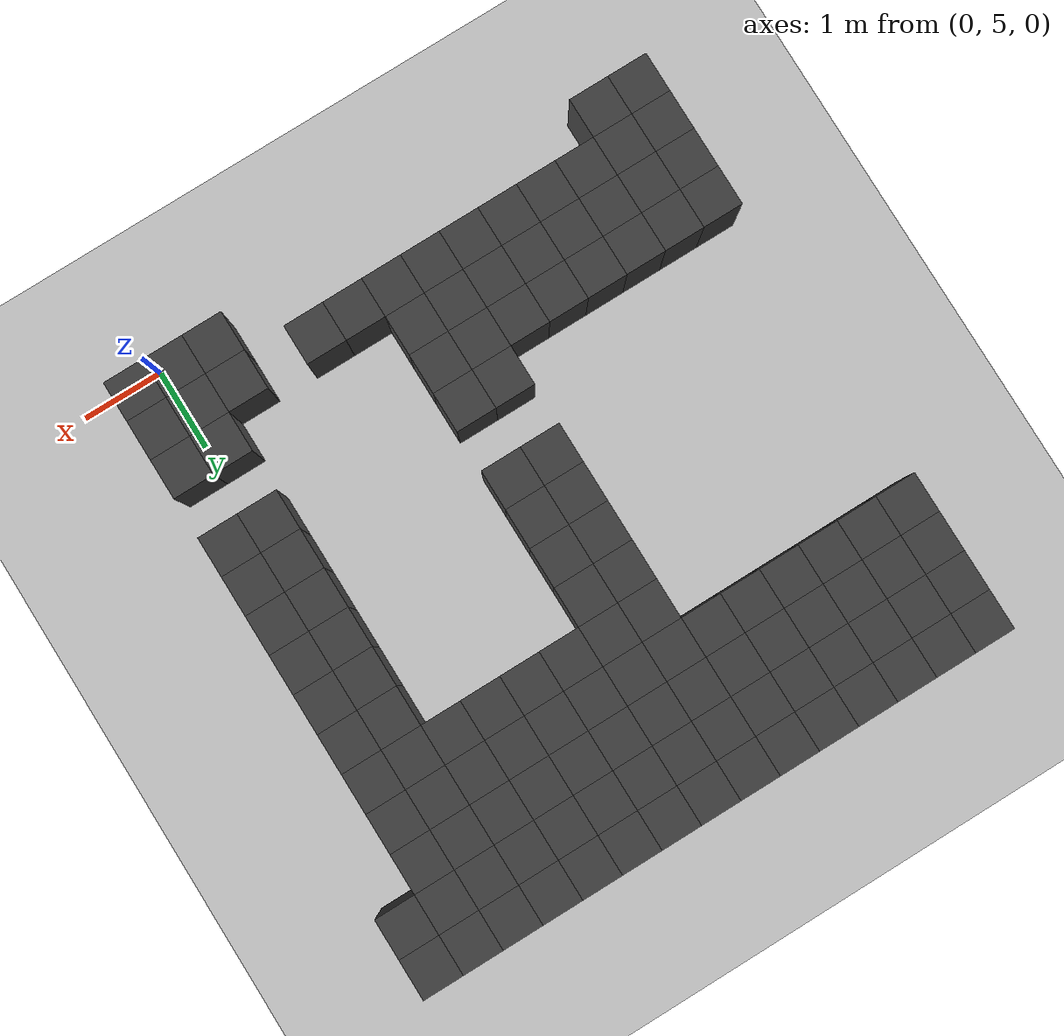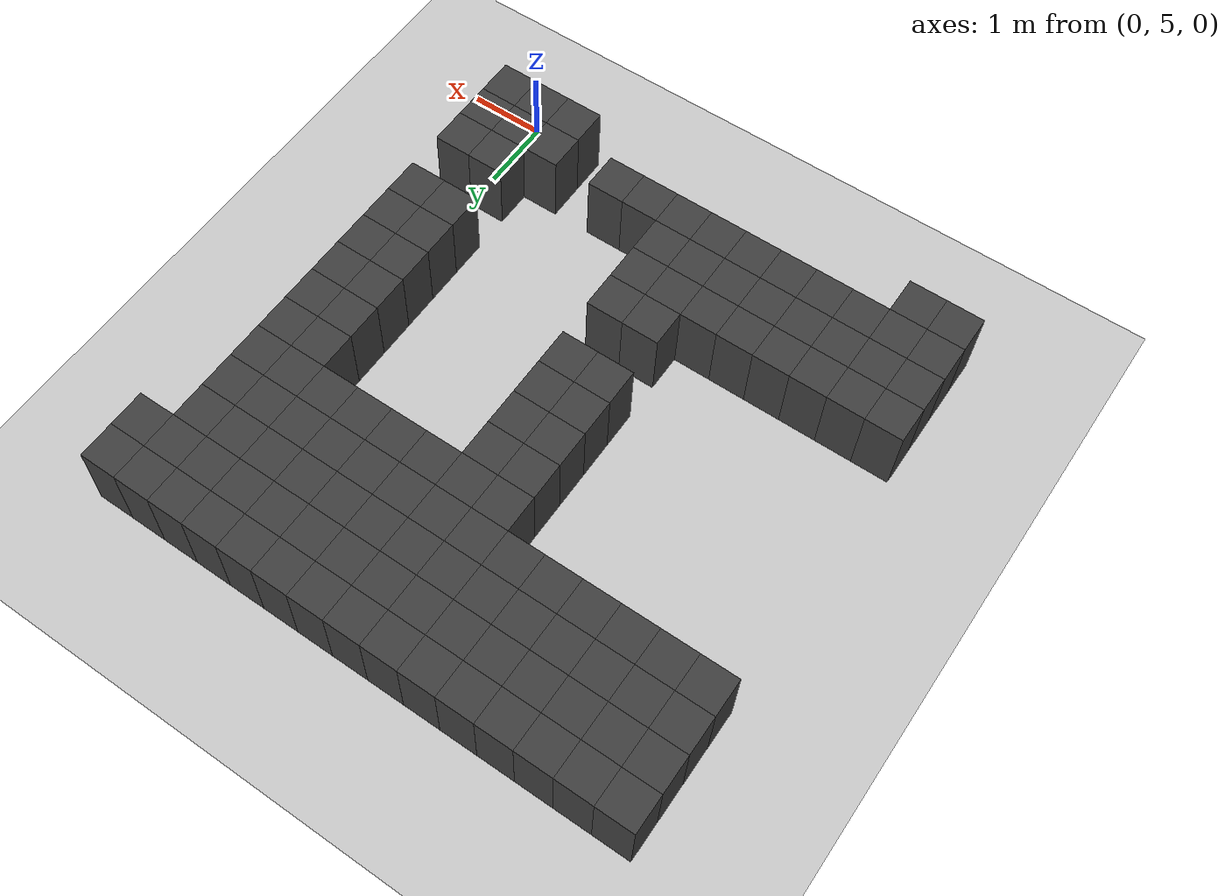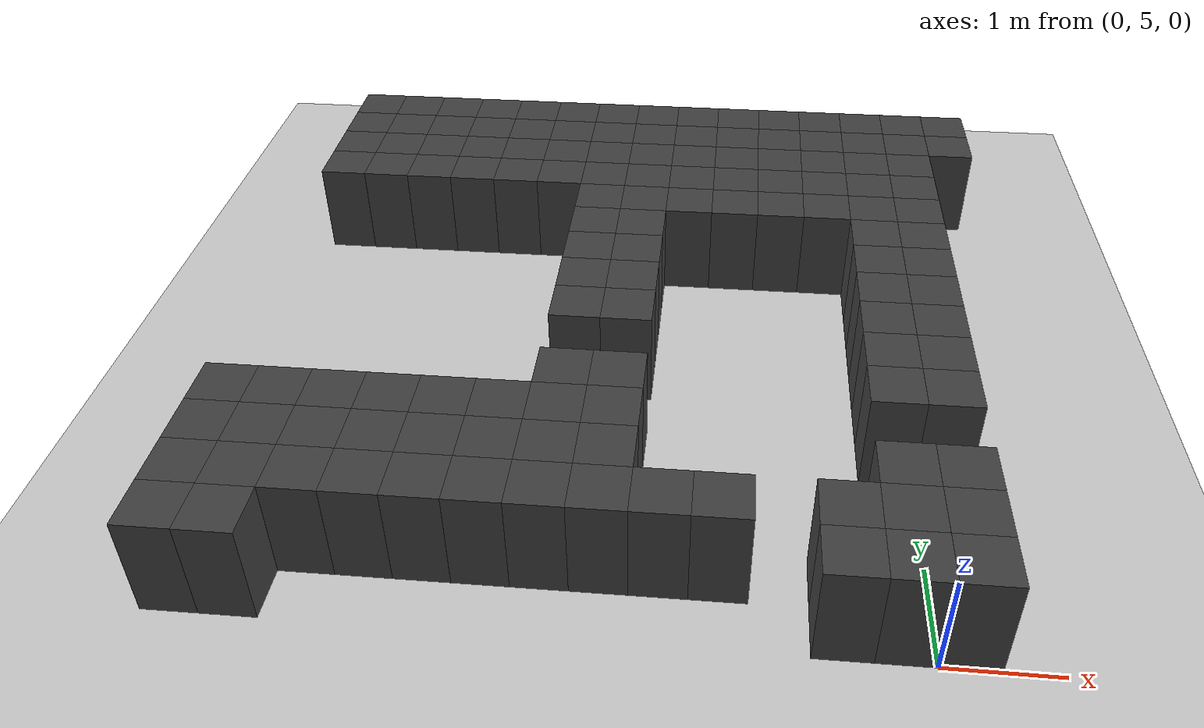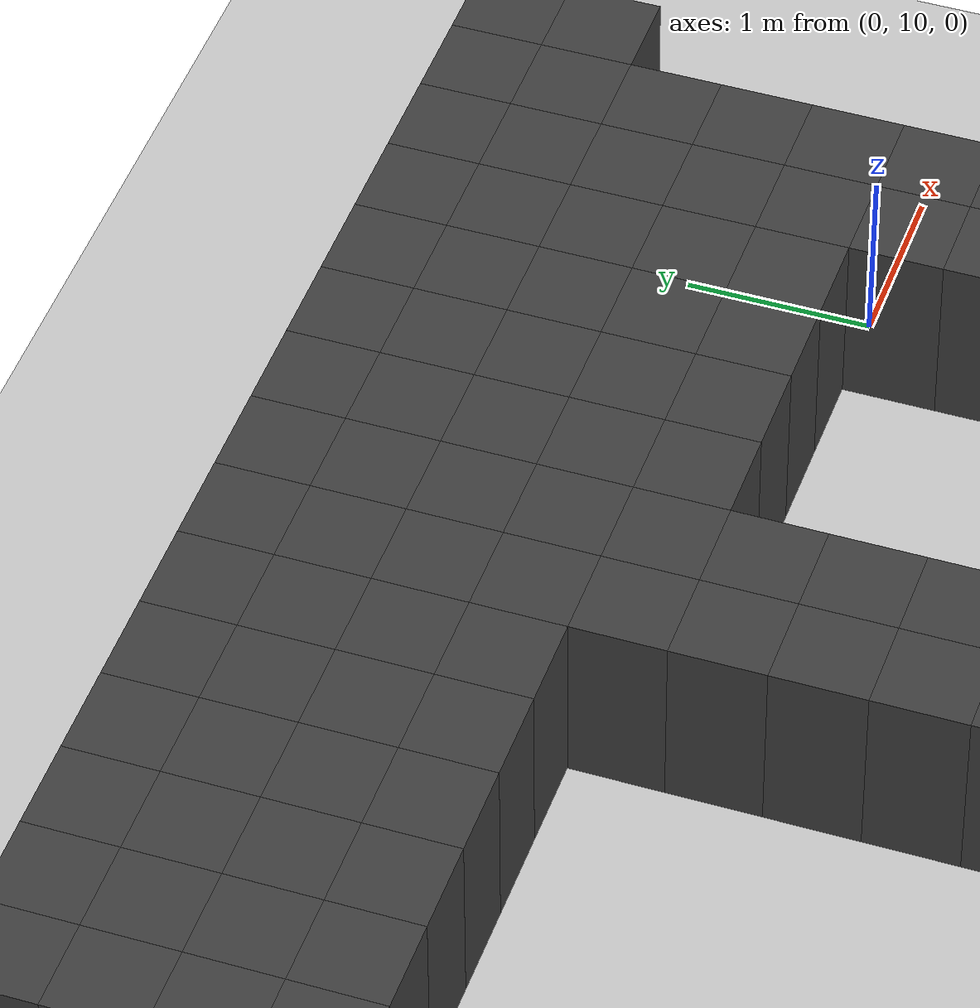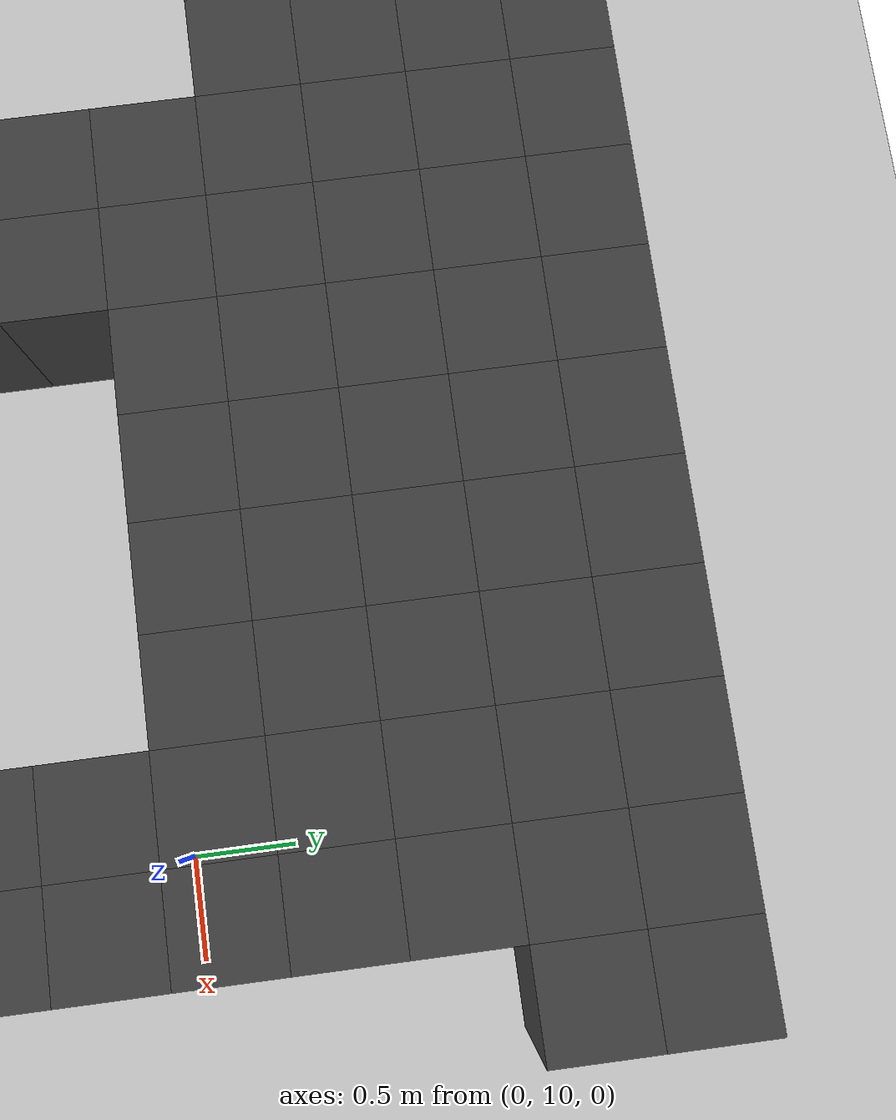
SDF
<sdf version="1.7">
 <world name="map_14802">
  <model name="ground_plane">
   <static>true</static>
   <link name="link">
    <collision name="collision">
     <geometry><plane><normal>0 0 1</normal><size>200 200</size></plane></geometry>
    </collision>
    <visual name="visual">
     <geometry><plane><normal>0 0 1</normal><size>200 200</size></plane></geometry>
     <material><ambient>0.8 0.8 0.8 1</ambient><diffuse>0.8 0.8 0.8 1</diffuse></material>
    </visual>
   </link>
  </model>
  <model name="maze_environment">
   <static>true</static>
   <link name="wall_12">
    <pose>-6.250 12.250 0.500 0 0 0</pose>
    <collision name="col"><geometry><box><size>0.5 0.5 1.0</size></box></geometry></collision>
    <visual name="vis">
     <geometry><box><size>0.5 0.5 1.0</size></box></geometry>
     <material><ambient>0.15 0.15 0.15 1</ambient><diffuse>0.25 0.25 0.25 1</diffuse></material>
    </visual>
   </link>
   <link name="wall_13">
    <pose>-5.750 12.250 0.500 0 0 0</pose>
    <collision name="col"><geometry><box><size>0.5 0.5 1.0</size></box></geometry></collision>
    <visual name="vis">
     <geometry><box><size>0.5 0.5 1.0</size></box></geometry>
     <material><ambient>0.15 0.15 0.15 1</ambient><diffuse>0.25 0.25 0.25 1</diffuse></material>
    </visual>
   </link>
   <link name="wall_14">
    <pose>-5.250 12.250 0.500 0 0 0</pose>
    <collision name="col"><geometry><box><size>0.5 0.5 1.0</size></box></geometry></collision>
    <visual name="vis">
     <geometry><box><size>0.5 0.5 1.0</size></box></geometry>
     <material><ambient>0.15 0.15 0.15 1</ambient><diffuse>0.25 0.25 0.25 1</diffuse></material>
    </visual>
   </link>
   <link name="wall_15">
    <pose>-4.750 12.250 0.500 0 0 0</pose>
    <collision name="col"><geometry><box><size>0.5 0.5 1.0</size></box></geometry></collision>
    <visual name="vis">
     <geometry><box><size>0.5 0.5 1.0</size></box></geometry>
     <material><ambient>0.15 0.15 0.15 1</ambient><diffuse>0.25 0.25 0.25 1</diffuse></material>
    </visual>
   </link>
   <link name="wall_16">
    <pose>-4.250 12.250 0.500 0 0 0</pose>
    <collision name="col"><geometry><box><size>0.5 0.5 1.0</size></box></geometry></collision>
    <visual name="vis">
     <geometry><box><size>0.5 0.5 1.0</size></box></geometry>
     <material><ambient>0.15 0.15 0.15 1</ambient><diffuse>0.25 0.25 0.25 1</diffuse></material>
    </visual>
   </link>
   <link name="wall_17">
    <pose>-3.750 12.250 0.500 0 0 0</pose>
    <collision name="col"><geometry><box><size>0.5 0.5 1.0</size></box></geometry></collision>
    <visual name="vis">
     <geometry><box><size>0.5 0.5 1.0</size></box></geometry>
     <material><ambient>0.15 0.15 0.15 1</ambient><diffuse>0.25 0.25 0.25 1</diffuse></material>
    </visual>
   </link>
   <link name="wall_18">
    <pose>-3.250 12.250 0.500 0 0 0</pose>
    <collision name="col"><geometry><box><size>0.5 0.5 1.0</size></box></geometry></collision>
    <visual name="vis">
     <geometry><box><size>0.5 0.5 1.0</size></box></geometry>
     <material><ambient>0.15 0.15 0.15 1</ambient><diffuse>0.25 0.25 0.25 1</diffuse></material>
    </visual>
   </link>
   <link name="wall_19">
    <pose>-2.750 12.250 0.500 0 0 0</pose>
    <collision name="col"><geometry><box><size>0.5 0.5 1.0</size></box></geometry></collision>
    <visual name="vis">
     <geometry><box><size>0.5 0.5 1.0</size></box></geometry>
     <material><ambient>0.15 0.15 0.15 1</ambient><diffuse>0.25 0.25 0.25 1</diffuse></material>
    </visual>
   </link>
   <link name="wall_20">
    <pose>-2.250 12.250 0.500 0 0 0</pose>
    <collision name="col"><geometry><box><size>0.5 0.5 1.0</size></box></geometry></collision>
    <visual name="vis">
     <geometry><box><size>0.5 0.5 1.0</size></box></geometry>
     <material><ambient>0.15 0.15 0.15 1</ambient><diffuse>0.25 0.25 0.25 1</diffuse></material>
    </visual>
   </link>
   <link name="wall_21">
    <pose>-1.750 12.250 0.500 0 0 0</pose>
    <collision name="col"><geometry><box><size>0.5 0.5 1.0</size></box></geometry></collision>
    <visual name="vis">
     <geometry><box><size>0.5 0.5 1.0</size></box></geometry>
     <material><ambient>0.15 0.15 0.15 1</ambient><diffuse>0.25 0.25 0.25 1</diffuse></material>
    </visual>
   </link>
   <link name="wall_22">
    <pose>-1.250 12.250 0.500 0 0 0</pose>
    <collision name="col"><geometry><box><size>0.5 0.5 1.0</size></box></geometry></collision>
    <visual name="vis">
     <geometry><box><size>0.5 0.5 1.0</size></box></geometry>
     <material><ambient>0.15 0.15 0.15 1</ambient><diffuse>0.25 0.25 0.25 1</diffuse></material>
    </visual>
   </link>
   <link name="wall_23">
    <pose>-0.750 12.250 0.500 0 0 0</pose>
    <collision name="col"><geometry><box><size>0.5 0.5 1.0</size></box></geometry></collision>
    <visual name="vis">
     <geometry><box><size>0.5 0.5 1.0</size></box></geometry>
     <material><ambient>0.15 0.15 0.15 1</ambient><diffuse>0.25 0.25 0.25 1</diffuse></material>
    </visual>
   </link>
   <link name="wall_24">
    <pose>-0.250 12.250 0.500 0 0 0</pose>
    <collision name="col"><geometry><box><size>0.5 0.5 1.0</size></box></geometry></collision>
    <visual name="vis">
     <geometry><box><size>0.5 0.5 1.0</size></box></geometry>
     <material><ambient>0.15 0.15 0.15 1</ambient><diffuse>0.25 0.25 0.25 1</diffuse></material>
    </visual>
   </link>
   <link name="wall_25">
    <pose>0.250 12.250 0.500 0 0 0</pose>
    <collision name="col"><geometry><box><size>0.5 0.5 1.0</size></box></geometry></collision>
    <visual name="vis">
     <geometry><box><size>0.5 0.5 1.0</size></box></geometry>
     <material><ambient>0.15 0.15 0.15 1</ambient><diffuse>0.25 0.25 0.25 1</diffuse></material>
    </visual>
   </link>
   <link name="wall_26">
    <pose>0.750 12.250 0.500 0 0 0</pose>
    <collision name="col"><geometry><box><size>0.5 0.5 1.0</size></box></geometry></collision>
    <visual name="vis">
     <geometry><box><size>0.5 0.5 1.0</size></box></geometry>
     <material><ambient>0.15 0.15 0.15 1</ambient><diffuse>0.25 0.25 0.25 1</diffuse></material>
    </visual>
   </link>
   <link name="wall_59">
    <pose>-6.250 11.750 0.500 0 0 0</pose>
    <collision name="col"><geometry><box><size>0.5 0.5 1.0</size></box></geometry></collision>
    <visual name="vis">
     <geometry><box><size>0.5 0.5 1.0</size></box></geometry>
     <material><ambient>0.15 0.15 0.15 1</ambient><diffuse>0.25 0.25 0.25 1</diffuse></material>
    </visual>
   </link>
   <link name="wall_60">
    <pose>-5.750 11.750 0.500 0 0 0</pose>
    <collision name="col"><geometry><box><size>0.5 0.5 1.0</size></box></geometry></collision>
    <visual name="vis">
     <geometry><box><size>0.5 0.5 1.0</size></box></geometry>
     <material><ambient>0.15 0.15 0.15 1</ambient><diffuse>0.25 0.25 0.25 1</diffuse></material>
    </visual>
   </link>
   <link name="wall_61">
    <pose>-5.250 11.750 0.500 0 0 0</pose>
    <collision name="col"><geometry><box><size>0.5 0.5 1.0</size></box></geometry></collision>
    <visual name="vis">
     <geometry><box><size>0.5 0.5 1.0</size></box></geometry>
     <material><ambient>0.15 0.15 0.15 1</ambient><diffuse>0.25 0.25 0.25 1</diffuse></material>
    </visual>
   </link>
   <link name="wall_62">
    <pose>-4.750 11.750 0.500 0 0 0</pose>
    <collision name="col"><geometry><box><size>0.5 0.5 1.0</size></box></geometry></collision>
    <visual name="vis">
     <geometry><box><size>0.5 0.5 1.0</size></box></geometry>
     <material><ambient>0.15 0.15 0.15 1</ambient><diffuse>0.25 0.25 0.25 1</diffuse></material>
    </visual>
   </link>
   <link name="wall_63">
    <pose>-4.250 11.750 0.500 0 0 0</pose>
    <collision name="col"><geometry><box><size>0.5 0.5 1.0</size></box></geometry></collision>
    <visual name="vis">
     <geometry><box><size>0.5 0.5 1.0</size></box></geometry>
     <material><ambient>0.15 0.15 0.15 1</ambient><diffuse>0.25 0.25 0.25 1</diffuse></material>
    </visual>
   </link>
   <link name="wall_64">
    <pose>-3.750 11.750 0.500 0 0 0</pose>
    <collision name="col"><geometry><box><size>0.5 0.5 1.0</size></box></geometry></collision>
    <visual name="vis">
     <geometry><box><size>0.5 0.5 1.0</size></box></geometry>
     <material><ambient>0.15 0.15 0.15 1</ambient><diffuse>0.25 0.25 0.25 1</diffuse></material>
    </visual>
   </link>
   <link name="wall_65">
    <pose>-3.250 11.750 0.500 0 0 0</pose>
    <collision name="col"><geometry><box><size>0.5 0.5 1.0</size></box></geometry></collision>
    <visual name="vis">
     <geometry><box><size>0.5 0.5 1.0</size></box></geometry>
     <material><ambient>0.15 0.15 0.15 1</ambient><diffuse>0.25 0.25 0.25 1</diffuse></material>
    </visual>
   </link>
   <link name="wall_66">
    <pose>-2.750 11.750 0.500 0 0 0</pose>
    <collision name="col"><geometry><box><size>0.5 0.5 1.0</size></box></geometry></collision>
    <visual name="vis">
     <geometry><box><size>0.5 0.5 1.0</size></box></geometry>
     <material><ambient>0.15 0.15 0.15 1</ambient><diffuse>0.25 0.25 0.25 1</diffuse></material>
    </visual>
   </link>
   <link name="wall_67">
    <pose>-2.250 11.750 0.500 0 0 0</pose>
    <collision name="col"><geometry><box><size>0.5 0.5 1.0</size></box></geometry></collision>
    <visual name="vis">
     <geometry><box><size>0.5 0.5 1.0</size></box></geometry>
     <material><ambient>0.15 0.15 0.15 1</ambient><diffuse>0.25 0.25 0.25 1</diffuse></material>
    </visual>
   </link>
   <link name="wall_68">
    <pose>-1.750 11.750 0.500 0 0 0</pose>
    <collision name="col"><geometry><box><size>0.5 0.5 1.0</size></box></geometry></collision>
    <visual name="vis">
     <geometry><box><size>0.5 0.5 1.0</size></box></geometry>
     <material><ambient>0.15 0.15 0.15 1</ambient><diffuse>0.25 0.25 0.25 1</diffuse></material>
    </visual>
   </link>
   <link name="wall_69">
    <pose>-1.250 11.750 0.500 0 0 0</pose>
    <collision name="col"><geometry><box><size>0.5 0.5 1.0</size></box></geometry></collision>
    <visual name="vis">
     <geometry><box><size>0.5 0.5 1.0</size></box></geometry>
     <material><ambient>0.15 0.15 0.15 1</ambient><diffuse>0.25 0.25 0.25 1</diffuse></material>
    </visual>
   </link>
   <link name="wall_70">
    <pose>-0.750 11.750 0.500 0 0 0</pose>
    <collision name="col"><geometry><box><size>0.5 0.5 1.0</size></box></geometry></collision>
    <visual name="vis">
     <geometry><box><size>0.5 0.5 1.0</size></box></geometry>
     <material><ambient>0.15 0.15 0.15 1</ambient><diffuse>0.25 0.25 0.25 1</diffuse></material>
    </visual>
   </link>
   <link name="wall_71">
    <pose>-0.250 11.750 0.500 0 0 0</pose>
    <collision name="col"><geometry><box><size>0.5 0.5 1.0</size></box></geometry></collision>
    <visual name="vis">
     <geometry><box><size>0.5 0.5 1.0</size></box></geometry>
     <material><ambient>0.15 0.15 0.15 1</ambient><diffuse>0.25 0.25 0.25 1</diffuse></material>
    </visual>
   </link>
   <link name="wall_72">
    <pose>0.250 11.750 0.500 0 0 0</pose>
    <collision name="col"><geometry><box><size>0.5 0.5 1.0</size></box></geometry></collision>
    <visual name="vis">
     <geometry><box><size>0.5 0.5 1.0</size></box></geometry>
     <material><ambient>0.15 0.15 0.15 1</ambient><diffuse>0.25 0.25 0.25 1</diffuse></material>
    </visual>
   </link>
   <link name="wall_73">
    <pose>0.750 11.750 0.500 0 0 0</pose>
    <collision name="col"><geometry><box><size>0.5 0.5 1.0</size></box></geometry></collision>
    <visual name="vis">
     <geometry><box><size>0.5 0.5 1.0</size></box></geometry>
     <material><ambient>0.15 0.15 0.15 1</ambient><diffuse>0.25 0.25 0.25 1</diffuse></material>
    </visual>
   </link>
   <link name="wall_106">
    <pose>-6.250 11.250 0.500 0 0 0</pose>
    <collision name="col"><geometry><box><size>0.5 0.5 1.0</size></box></geometry></collision>
    <visual name="vis">
     <geometry><box><size>0.5 0.5 1.0</size></box></geometry>
     <material><ambient>0.15 0.15 0.15 1</ambient><diffuse>0.25 0.25 0.25 1</diffuse></material>
    </visual>
   </link>
   <link name="wall_107">
    <pose>-5.750 11.250 0.500 0 0 0</pose>
    <collision name="col"><geometry><box><size>0.5 0.5 1.0</size></box></geometry></collision>
    <visual name="vis">
     <geometry><box><size>0.5 0.5 1.0</size></box></geometry>
     <material><ambient>0.15 0.15 0.15 1</ambient><diffuse>0.25 0.25 0.25 1</diffuse></material>
    </visual>
   </link>
   <link name="wall_108">
    <pose>-5.250 11.250 0.500 0 0 0</pose>
    <collision name="col"><geometry><box><size>0.5 0.5 1.0</size></box></geometry></collision>
    <visual name="vis">
     <geometry><box><size>0.5 0.5 1.0</size></box></geometry>
     <material><ambient>0.15 0.15 0.15 1</ambient><diffuse>0.25 0.25 0.25 1</diffuse></material>
    </visual>
   </link>
   <link name="wall_109">
    <pose>-4.750 11.250 0.500 0 0 0</pose>
    <collision name="col"><geometry><box><size>0.5 0.5 1.0</size></box></geometry></collision>
    <visual name="vis">
     <geometry><box><size>0.5 0.5 1.0</size></box></geometry>
     <material><ambient>0.15 0.15 0.15 1</ambient><diffuse>0.25 0.25 0.25 1</diffuse></material>
    </visual>
   </link>
   <link name="wall_110">
    <pose>-4.250 11.250 0.500 0 0 0</pose>
    <collision name="col"><geometry><box><size>0.5 0.5 1.0</size></box></geometry></collision>
    <visual name="vis">
     <geometry><box><size>0.5 0.5 1.0</size></box></geometry>
     <material><ambient>0.15 0.15 0.15 1</ambient><diffuse>0.25 0.25 0.25 1</diffuse></material>
    </visual>
   </link>
   <link name="wall_111">
    <pose>-3.750 11.250 0.500 0 0 0</pose>
    <collision name="col"><geometry><box><size>0.5 0.5 1.0</size></box></geometry></collision>
    <visual name="vis">
     <geometry><box><size>0.5 0.5 1.0</size></box></geometry>
     <material><ambient>0.15 0.15 0.15 1</ambient><diffuse>0.25 0.25 0.25 1</diffuse></material>
    </visual>
   </link>
   <link name="wall_112">
    <pose>-3.250 11.250 0.500 0 0 0</pose>
    <collision name="col"><geometry><box><size>0.5 0.5 1.0</size></box></geometry></collision>
    <visual name="vis">
     <geometry><box><size>0.5 0.5 1.0</size></box></geometry>
     <material><ambient>0.15 0.15 0.15 1</ambient><diffuse>0.25 0.25 0.25 1</diffuse></material>
    </visual>
   </link>
   <link name="wall_113">
    <pose>-2.750 11.250 0.500 0 0 0</pose>
    <collision name="col"><geometry><box><size>0.5 0.5 1.0</size></box></geometry></collision>
    <visual name="vis">
     <geometry><box><size>0.5 0.5 1.0</size></box></geometry>
     <material><ambient>0.15 0.15 0.15 1</ambient><diffuse>0.25 0.25 0.25 1</diffuse></material>
    </visual>
   </link>
   <link name="wall_114">
    <pose>-2.250 11.250 0.500 0 0 0</pose>
    <collision name="col"><geometry><box><size>0.5 0.5 1.0</size></box></geometry></collision>
    <visual name="vis">
     <geometry><box><size>0.5 0.5 1.0</size></box></geometry>
     <material><ambient>0.15 0.15 0.15 1</ambient><diffuse>0.25 0.25 0.25 1</diffuse></material>
    </visual>
   </link>
   <link name="wall_115">
    <pose>-1.750 11.250 0.500 0 0 0</pose>
    <collision name="col"><geometry><box><size>0.5 0.5 1.0</size></box></geometry></collision>
    <visual name="vis">
     <geometry><box><size>0.5 0.5 1.0</size></box></geometry>
     <material><ambient>0.15 0.15 0.15 1</ambient><diffuse>0.25 0.25 0.25 1</diffuse></material>
    </visual>
   </link>
   <link name="wall_116">
    <pose>-1.250 11.250 0.500 0 0 0</pose>
    <collision name="col"><geometry><box><size>0.5 0.5 1.0</size></box></geometry></collision>
    <visual name="vis">
     <geometry><box><size>0.5 0.5 1.0</size></box></geometry>
     <material><ambient>0.15 0.15 0.15 1</ambient><diffuse>0.25 0.25 0.25 1</diffuse></material>
    </visual>
   </link>
   <link name="wall_117">
    <pose>-0.750 11.250 0.500 0 0 0</pose>
    <collision name="col"><geometry><box><size>0.5 0.5 1.0</size></box></geometry></collision>
    <visual name="vis">
     <geometry><box><size>0.5 0.5 1.0</size></box></geometry>
     <material><ambient>0.15 0.15 0.15 1</ambient><diffuse>0.25 0.25 0.25 1</diffuse></material>
    </visual>
   </link>
   <link name="wall_118">
    <pose>-0.250 11.250 0.500 0 0 0</pose>
    <collision name="col"><geometry><box><size>0.5 0.5 1.0</size></box></geometry></collision>
    <visual name="vis">
     <geometry><box><size>0.5 0.5 1.0</size></box></geometry>
     <material><ambient>0.15 0.15 0.15 1</ambient><diffuse>0.25 0.25 0.25 1</diffuse></material>
    </visual>
   </link>
   <link name="wall_119">
    <pose>0.250 11.250 0.500 0 0 0</pose>
    <collision name="col"><geometry><box><size>0.5 0.5 1.0</size></box></geometry></collision>
    <visual name="vis">
     <geometry><box><size>0.5 0.5 1.0</size></box></geometry>
     <material><ambient>0.15 0.15 0.15 1</ambient><diffuse>0.25 0.25 0.25 1</diffuse></material>
    </visual>
   </link>
   <link name="wall_148">
    <pose>-6.250 10.750 0.500 0 0 0</pose>
    <collision name="col"><geometry><box><size>0.5 0.5 1.0</size></box></geometry></collision>
    <visual name="vis">
     <geometry><box><size>0.5 0.5 1.0</size></box></geometry>
     <material><ambient>0.15 0.15 0.15 1</ambient><diffuse>0.25 0.25 0.25 1</diffuse></material>
    </visual>
   </link>
   <link name="wall_149">
    <pose>-5.750 10.750 0.500 0 0 0</pose>
    <collision name="col"><geometry><box><size>0.5 0.5 1.0</size></box></geometry></collision>
    <visual name="vis">
     <geometry><box><size>0.5 0.5 1.0</size></box></geometry>
     <material><ambient>0.15 0.15 0.15 1</ambient><diffuse>0.25 0.25 0.25 1</diffuse></material>
    </visual>
   </link>
   <link name="wall_150">
    <pose>-5.250 10.750 0.500 0 0 0</pose>
    <collision name="col"><geometry><box><size>0.5 0.5 1.0</size></box></geometry></collision>
    <visual name="vis">
     <geometry><box><size>0.5 0.5 1.0</size></box></geometry>
     <material><ambient>0.15 0.15 0.15 1</ambient><diffuse>0.25 0.25 0.25 1</diffuse></material>
    </visual>
   </link>
   <link name="wall_151">
    <pose>-4.750 10.750 0.500 0 0 0</pose>
    <collision name="col"><geometry><box><size>0.5 0.5 1.0</size></box></geometry></collision>
    <visual name="vis">
     <geometry><box><size>0.5 0.5 1.0</size></box></geometry>
     <material><ambient>0.15 0.15 0.15 1</ambient><diffuse>0.25 0.25 0.25 1</diffuse></material>
    </visual>
   </link>
   <link name="wall_152">
    <pose>-4.250 10.750 0.500 0 0 0</pose>
    <collision name="col"><geometry><box><size>0.5 0.5 1.0</size></box></geometry></collision>
    <visual name="vis">
     <geometry><box><size>0.5 0.5 1.0</size></box></geometry>
     <material><ambient>0.15 0.15 0.15 1</ambient><diffuse>0.25 0.25 0.25 1</diffuse></material>
    </visual>
   </link>
   <link name="wall_153">
    <pose>-3.750 10.750 0.500 0 0 0</pose>
    <collision name="col"><geometry><box><size>0.5 0.5 1.0</size></box></geometry></collision>
    <visual name="vis">
     <geometry><box><size>0.5 0.5 1.0</size></box></geometry>
     <material><ambient>0.15 0.15 0.15 1</ambient><diffuse>0.25 0.25 0.25 1</diffuse></material>
    </visual>
   </link>
   <link name="wall_154">
    <pose>-3.250 10.750 0.500 0 0 0</pose>
    <collision name="col"><geometry><box><size>0.5 0.5 1.0</size></box></geometry></collision>
    <visual name="vis">
     <geometry><box><size>0.5 0.5 1.0</size></box></geometry>
     <material><ambient>0.15 0.15 0.15 1</ambient><diffuse>0.25 0.25 0.25 1</diffuse></material>
    </visual>
   </link>
   <link name="wall_155">
    <pose>-2.750 10.750 0.500 0 0 0</pose>
    <collision name="col"><geometry><box><size>0.5 0.5 1.0</size></box></geometry></collision>
    <visual name="vis">
     <geometry><box><size>0.5 0.5 1.0</size></box></geometry>
     <material><ambient>0.15 0.15 0.15 1</ambient><diffuse>0.25 0.25 0.25 1</diffuse></material>
    </visual>
   </link>
   <link name="wall_156">
    <pose>-2.250 10.750 0.500 0 0 0</pose>
    <collision name="col"><geometry><box><size>0.5 0.5 1.0</size></box></geometry></collision>
    <visual name="vis">
     <geometry><box><size>0.5 0.5 1.0</size></box></geometry>
     <material><ambient>0.15 0.15 0.15 1</ambient><diffuse>0.25 0.25 0.25 1</diffuse></material>
    </visual>
   </link>
   <link name="wall_157">
    <pose>-1.750 10.750 0.500 0 0 0</pose>
    <collision name="col"><geometry><box><size>0.5 0.5 1.0</size></box></geometry></collision>
    <visual name="vis">
     <geometry><box><size>0.5 0.5 1.0</size></box></geometry>
     <material><ambient>0.15 0.15 0.15 1</ambient><diffuse>0.25 0.25 0.25 1</diffuse></material>
    </visual>
   </link>
   <link name="wall_158">
    <pose>-1.250 10.750 0.500 0 0 0</pose>
    <collision name="col"><geometry><box><size>0.5 0.5 1.0</size></box></geometry></collision>
    <visual name="vis">
     <geometry><box><size>0.5 0.5 1.0</size></box></geometry>
     <material><ambient>0.15 0.15 0.15 1</ambient><diffuse>0.25 0.25 0.25 1</diffuse></material>
    </visual>
   </link>
   <link name="wall_159">
    <pose>-0.750 10.750 0.500 0 0 0</pose>
    <collision name="col"><geometry><box><size>0.5 0.5 1.0</size></box></geometry></collision>
    <visual name="vis">
     <geometry><box><size>0.5 0.5 1.0</size></box></geometry>
     <material><ambient>0.15 0.15 0.15 1</ambient><diffuse>0.25 0.25 0.25 1</diffuse></material>
    </visual>
   </link>
   <link name="wall_160">
    <pose>-0.250 10.750 0.500 0 0 0</pose>
    <collision name="col"><geometry><box><size>0.5 0.5 1.0</size></box></geometry></collision>
    <visual name="vis">
     <geometry><box><size>0.5 0.5 1.0</size></box></geometry>
     <material><ambient>0.15 0.15 0.15 1</ambient><diffuse>0.25 0.25 0.25 1</diffuse></material>
    </visual>
   </link>
   <link name="wall_161">
    <pose>0.250 10.750 0.500 0 0 0</pose>
    <collision name="col"><geometry><box><size>0.5 0.5 1.0</size></box></geometry></collision>
    <visual name="vis">
     <geometry><box><size>0.5 0.5 1.0</size></box></geometry>
     <material><ambient>0.15 0.15 0.15 1</ambient><diffuse>0.25 0.25 0.25 1</diffuse></material>
    </visual>
   </link>
   <link name="wall_190">
    <pose>-3.250 10.250 0.500 0 0 0</pose>
    <collision name="col"><geometry><box><size>0.5 0.5 1.0</size></box></geometry></collision>
    <visual name="vis">
     <geometry><box><size>0.5 0.5 1.0</size></box></geometry>
     <material><ambient>0.15 0.15 0.15 1</ambient><diffuse>0.25 0.25 0.25 1</diffuse></material>
    </visual>
   </link>
   <link name="wall_191">
    <pose>-2.750 10.250 0.500 0 0 0</pose>
    <collision name="col"><geometry><box><size>0.5 0.5 1.0</size></box></geometry></collision>
    <visual name="vis">
     <geometry><box><size>0.5 0.5 1.0</size></box></geometry>
     <material><ambient>0.15 0.15 0.15 1</ambient><diffuse>0.25 0.25 0.25 1</diffuse></material>
    </visual>
   </link>
   <link name="wall_192">
    <pose>-2.250 10.250 0.500 0 0 0</pose>
    <collision name="col"><geometry><box><size>0.5 0.5 1.0</size></box></geometry></collision>
    <visual name="vis">
     <geometry><box><size>0.5 0.5 1.0</size></box></geometry>
     <material><ambient>0.15 0.15 0.15 1</ambient><diffuse>0.25 0.25 0.25 1</diffuse></material>
    </visual>
   </link>
   <link name="wall_193">
    <pose>-1.750 10.250 0.500 0 0 0</pose>
    <collision name="col"><geometry><box><size>0.5 0.5 1.0</size></box></geometry></collision>
    <visual name="vis">
     <geometry><box><size>0.5 0.5 1.0</size></box></geometry>
     <material><ambient>0.15 0.15 0.15 1</ambient><diffuse>0.25 0.25 0.25 1</diffuse></material>
    </visual>
   </link>
   <link name="wall_194">
    <pose>-1.250 10.250 0.500 0 0 0</pose>
    <collision name="col"><geometry><box><size>0.5 0.5 1.0</size></box></geometry></collision>
    <visual name="vis">
     <geometry><box><size>0.5 0.5 1.0</size></box></geometry>
     <material><ambient>0.15 0.15 0.15 1</ambient><diffuse>0.25 0.25 0.25 1</diffuse></material>
    </visual>
   </link>
   <link name="wall_195">
    <pose>-0.750 10.250 0.500 0 0 0</pose>
    <collision name="col"><geometry><box><size>0.5 0.5 1.0</size></box></geometry></collision>
    <visual name="vis">
     <geometry><box><size>0.5 0.5 1.0</size></box></geometry>
     <material><ambient>0.15 0.15 0.15 1</ambient><diffuse>0.25 0.25 0.25 1</diffuse></material>
    </visual>
   </link>
   <link name="wall_196">
    <pose>-0.250 10.250 0.500 0 0 0</pose>
    <collision name="col"><geometry><box><size>0.5 0.5 1.0</size></box></geometry></collision>
    <visual name="vis">
     <geometry><box><size>0.5 0.5 1.0</size></box></geometry>
     <material><ambient>0.15 0.15 0.15 1</ambient><diffuse>0.25 0.25 0.25 1</diffuse></material>
    </visual>
   </link>
   <link name="wall_197">
    <pose>0.250 10.250 0.500 0 0 0</pose>
    <collision name="col"><geometry><box><size>0.5 0.5 1.0</size></box></geometry></collision>
    <visual name="vis">
     <geometry><box><size>0.5 0.5 1.0</size></box></geometry>
     <material><ambient>0.15 0.15 0.15 1</ambient><diffuse>0.25 0.25 0.25 1</diffuse></material>
    </visual>
   </link>
   <link name="wall_226">
    <pose>-3.250 9.750 0.500 0 0 0</pose>
    <collision name="col"><geometry><box><size>0.5 0.5 1.0</size></box></geometry></collision>
    <visual name="vis">
     <geometry><box><size>0.5 0.5 1.0</size></box></geometry>
     <material><ambient>0.15 0.15 0.15 1</ambient><diffuse>0.25 0.25 0.25 1</diffuse></material>
    </visual>
   </link>
   <link name="wall_227">
    <pose>-2.750 9.750 0.500 0 0 0</pose>
    <collision name="col"><geometry><box><size>0.5 0.5 1.0</size></box></geometry></collision>
    <visual name="vis">
     <geometry><box><size>0.5 0.5 1.0</size></box></geometry>
     <material><ambient>0.15 0.15 0.15 1</ambient><diffuse>0.25 0.25 0.25 1</diffuse></material>
    </visual>
   </link>
   <link name="wall_228">
    <pose>-0.250 9.750 0.500 0 0 0</pose>
    <collision name="col"><geometry><box><size>0.5 0.5 1.0</size></box></geometry></collision>
    <visual name="vis">
     <geometry><box><size>0.5 0.5 1.0</size></box></geometry>
     <material><ambient>0.15 0.15 0.15 1</ambient><diffuse>0.25 0.25 0.25 1</diffuse></material>
    </visual>
   </link>
   <link name="wall_229">
    <pose>0.250 9.750 0.500 0 0 0</pose>
    <collision name="col"><geometry><box><size>0.5 0.5 1.0</size></box></geometry></collision>
    <visual name="vis">
     <geometry><box><size>0.5 0.5 1.0</size></box></geometry>
     <material><ambient>0.15 0.15 0.15 1</ambient><diffuse>0.25 0.25 0.25 1</diffuse></material>
    </visual>
   </link>
   <link name="wall_255">
    <pose>-3.250 9.250 0.500 0 0 0</pose>
    <collision name="col"><geometry><box><size>0.5 0.5 1.0</size></box></geometry></collision>
    <visual name="vis">
     <geometry><box><size>0.5 0.5 1.0</size></box></geometry>
     <material><ambient>0.15 0.15 0.15 1</ambient><diffuse>0.25 0.25 0.25 1</diffuse></material>
    </visual>
   </link>
   <link name="wall_256">
    <pose>-2.750 9.250 0.500 0 0 0</pose>
    <collision name="col"><geometry><box><size>0.5 0.5 1.0</size></box></geometry></collision>
    <visual name="vis">
     <geometry><box><size>0.5 0.5 1.0</size></box></geometry>
     <material><ambient>0.15 0.15 0.15 1</ambient><diffuse>0.25 0.25 0.25 1</diffuse></material>
    </visual>
   </link>
   <link name="wall_257">
    <pose>-0.250 9.250 0.500 0 0 0</pose>
    <collision name="col"><geometry><box><size>0.5 0.5 1.0</size></box></geometry></collision>
    <visual name="vis">
     <geometry><box><size>0.5 0.5 1.0</size></box></geometry>
     <material><ambient>0.15 0.15 0.15 1</ambient><diffuse>0.25 0.25 0.25 1</diffuse></material>
    </visual>
   </link>
   <link name="wall_258">
    <pose>0.250 9.250 0.500 0 0 0</pose>
    <collision name="col"><geometry><box><size>0.5 0.5 1.0</size></box></geometry></collision>
    <visual name="vis">
     <geometry><box><size>0.5 0.5 1.0</size></box></geometry>
     <material><ambient>0.15 0.15 0.15 1</ambient><diffuse>0.25 0.25 0.25 1</diffuse></material>
    </visual>
   </link>
   <link name="wall_281">
    <pose>-3.250 8.750 0.500 0 0 0</pose>
    <collision name="col"><geometry><box><size>0.5 0.5 1.0</size></box></geometry></collision>
    <visual name="vis">
     <geometry><box><size>0.5 0.5 1.0</size></box></geometry>
     <material><ambient>0.15 0.15 0.15 1</ambient><diffuse>0.25 0.25 0.25 1</diffuse></material>
    </visual>
   </link>
   <link name="wall_282">
    <pose>-2.750 8.750 0.500 0 0 0</pose>
    <collision name="col"><geometry><box><size>0.5 0.5 1.0</size></box></geometry></collision>
    <visual name="vis">
     <geometry><box><size>0.5 0.5 1.0</size></box></geometry>
     <material><ambient>0.15 0.15 0.15 1</ambient><diffuse>0.25 0.25 0.25 1</diffuse></material>
    </visual>
   </link>
   <link name="wall_283">
    <pose>-0.250 8.750 0.500 0 0 0</pose>
    <collision name="col"><geometry><box><size>0.5 0.5 1.0</size></box></geometry></collision>
    <visual name="vis">
     <geometry><box><size>0.5 0.5 1.0</size></box></geometry>
     <material><ambient>0.15 0.15 0.15 1</ambient><diffuse>0.25 0.25 0.25 1</diffuse></material>
    </visual>
   </link>
   <link name="wall_284">
    <pose>0.250 8.750 0.500 0 0 0</pose>
    <collision name="col"><geometry><box><size>0.5 0.5 1.0</size></box></geometry></collision>
    <visual name="vis">
     <geometry><box><size>0.5 0.5 1.0</size></box></geometry>
     <material><ambient>0.15 0.15 0.15 1</ambient><diffuse>0.25 0.25 0.25 1</diffuse></material>
    </visual>
   </link>
   <link name="wall_311">
    <pose>-3.250 8.250 0.500 0 0 0</pose>
    <collision name="col"><geometry><box><size>0.5 0.5 1.0</size></box></geometry></collision>
    <visual name="vis">
     <geometry><box><size>0.5 0.5 1.0</size></box></geometry>
     <material><ambient>0.15 0.15 0.15 1</ambient><diffuse>0.25 0.25 0.25 1</diffuse></material>
    </visual>
   </link>
   <link name="wall_312">
    <pose>-2.750 8.250 0.500 0 0 0</pose>
    <collision name="col"><geometry><box><size>0.5 0.5 1.0</size></box></geometry></collision>
    <visual name="vis">
     <geometry><box><size>0.5 0.5 1.0</size></box></geometry>
     <material><ambient>0.15 0.15 0.15 1</ambient><diffuse>0.25 0.25 0.25 1</diffuse></material>
    </visual>
   </link>
   <link name="wall_313">
    <pose>-0.250 8.250 0.500 0 0 0</pose>
    <collision name="col"><geometry><box><size>0.5 0.5 1.0</size></box></geometry></collision>
    <visual name="vis">
     <geometry><box><size>0.5 0.5 1.0</size></box></geometry>
     <material><ambient>0.15 0.15 0.15 1</ambient><diffuse>0.25 0.25 0.25 1</diffuse></material>
    </visual>
   </link>
   <link name="wall_314">
    <pose>0.250 8.250 0.500 0 0 0</pose>
    <collision name="col"><geometry><box><size>0.5 0.5 1.0</size></box></geometry></collision>
    <visual name="vis">
     <geometry><box><size>0.5 0.5 1.0</size></box></geometry>
     <material><ambient>0.15 0.15 0.15 1</ambient><diffuse>0.25 0.25 0.25 1</diffuse></material>
    </visual>
   </link>
   <link name="wall_337">
    <pose>-0.250 7.750 0.500 0 0 0</pose>
    <collision name="col"><geometry><box><size>0.5 0.5 1.0</size></box></geometry></collision>
    <visual name="vis">
     <geometry><box><size>0.5 0.5 1.0</size></box></geometry>
     <material><ambient>0.15 0.15 0.15 1</ambient><diffuse>0.25 0.25 0.25 1</diffuse></material>
    </visual>
   </link>
   <link name="wall_338">
    <pose>0.250 7.750 0.500 0 0 0</pose>
    <collision name="col"><geometry><box><size>0.5 0.5 1.0</size></box></geometry></collision>
    <visual name="vis">
     <geometry><box><size>0.5 0.5 1.0</size></box></geometry>
     <material><ambient>0.15 0.15 0.15 1</ambient><diffuse>0.25 0.25 0.25 1</diffuse></material>
    </visual>
   </link>
   <link name="wall_361">
    <pose>-3.250 7.250 0.500 0 0 0</pose>
    <collision name="col"><geometry><box><size>0.5 0.5 1.0</size></box></geometry></collision>
    <visual name="vis">
     <geometry><box><size>0.5 0.5 1.0</size></box></geometry>
     <material><ambient>0.15 0.15 0.15 1</ambient><diffuse>0.25 0.25 0.25 1</diffuse></material>
    </visual>
   </link>
   <link name="wall_362">
    <pose>-2.750 7.250 0.500 0 0 0</pose>
    <collision name="col"><geometry><box><size>0.5 0.5 1.0</size></box></geometry></collision>
    <visual name="vis">
     <geometry><box><size>0.5 0.5 1.0</size></box></geometry>
     <material><ambient>0.15 0.15 0.15 1</ambient><diffuse>0.25 0.25 0.25 1</diffuse></material>
    </visual>
   </link>
   <link name="wall_363">
    <pose>-0.250 7.250 0.500 0 0 0</pose>
    <collision name="col"><geometry><box><size>0.5 0.5 1.0</size></box></geometry></collision>
    <visual name="vis">
     <geometry><box><size>0.5 0.5 1.0</size></box></geometry>
     <material><ambient>0.15 0.15 0.15 1</ambient><diffuse>0.25 0.25 0.25 1</diffuse></material>
    </visual>
   </link>
   <link name="wall_364">
    <pose>0.250 7.250 0.500 0 0 0</pose>
    <collision name="col"><geometry><box><size>0.5 0.5 1.0</size></box></geometry></collision>
    <visual name="vis">
     <geometry><box><size>0.5 0.5 1.0</size></box></geometry>
     <material><ambient>0.15 0.15 0.15 1</ambient><diffuse>0.25 0.25 0.25 1</diffuse></material>
    </visual>
   </link>
   <link name="wall_389">
    <pose>-6.250 6.750 0.500 0 0 0</pose>
    <collision name="col"><geometry><box><size>0.5 0.5 1.0</size></box></geometry></collision>
    <visual name="vis">
     <geometry><box><size>0.5 0.5 1.0</size></box></geometry>
     <material><ambient>0.15 0.15 0.15 1</ambient><diffuse>0.25 0.25 0.25 1</diffuse></material>
    </visual>
   </link>
   <link name="wall_390">
    <pose>-5.750 6.750 0.500 0 0 0</pose>
    <collision name="col"><geometry><box><size>0.5 0.5 1.0</size></box></geometry></collision>
    <visual name="vis">
     <geometry><box><size>0.5 0.5 1.0</size></box></geometry>
     <material><ambient>0.15 0.15 0.15 1</ambient><diffuse>0.25 0.25 0.25 1</diffuse></material>
    </visual>
   </link>
   <link name="wall_391">
    <pose>-5.250 6.750 0.500 0 0 0</pose>
    <collision name="col"><geometry><box><size>0.5 0.5 1.0</size></box></geometry></collision>
    <visual name="vis">
     <geometry><box><size>0.5 0.5 1.0</size></box></geometry>
     <material><ambient>0.15 0.15 0.15 1</ambient><diffuse>0.25 0.25 0.25 1</diffuse></material>
    </visual>
   </link>
   <link name="wall_392">
    <pose>-4.750 6.750 0.500 0 0 0</pose>
    <collision name="col"><geometry><box><size>0.5 0.5 1.0</size></box></geometry></collision>
    <visual name="vis">
     <geometry><box><size>0.5 0.5 1.0</size></box></geometry>
     <material><ambient>0.15 0.15 0.15 1</ambient><diffuse>0.25 0.25 0.25 1</diffuse></material>
    </visual>
   </link>
   <link name="wall_393">
    <pose>-4.250 6.750 0.500 0 0 0</pose>
    <collision name="col"><geometry><box><size>0.5 0.5 1.0</size></box></geometry></collision>
    <visual name="vis">
     <geometry><box><size>0.5 0.5 1.0</size></box></geometry>
     <material><ambient>0.15 0.15 0.15 1</ambient><diffuse>0.25 0.25 0.25 1</diffuse></material>
    </visual>
   </link>
   <link name="wall_394">
    <pose>-3.750 6.750 0.500 0 0 0</pose>
    <collision name="col"><geometry><box><size>0.5 0.5 1.0</size></box></geometry></collision>
    <visual name="vis">
     <geometry><box><size>0.5 0.5 1.0</size></box></geometry>
     <material><ambient>0.15 0.15 0.15 1</ambient><diffuse>0.25 0.25 0.25 1</diffuse></material>
    </visual>
   </link>
   <link name="wall_395">
    <pose>-3.250 6.750 0.500 0 0 0</pose>
    <collision name="col"><geometry><box><size>0.5 0.5 1.0</size></box></geometry></collision>
    <visual name="vis">
     <geometry><box><size>0.5 0.5 1.0</size></box></geometry>
     <material><ambient>0.15 0.15 0.15 1</ambient><diffuse>0.25 0.25 0.25 1</diffuse></material>
    </visual>
   </link>
   <link name="wall_396">
    <pose>-2.750 6.750 0.500 0 0 0</pose>
    <collision name="col"><geometry><box><size>0.5 0.5 1.0</size></box></geometry></collision>
    <visual name="vis">
     <geometry><box><size>0.5 0.5 1.0</size></box></geometry>
     <material><ambient>0.15 0.15 0.15 1</ambient><diffuse>0.25 0.25 0.25 1</diffuse></material>
    </visual>
   </link>
   <link name="wall_418">
    <pose>-6.250 6.250 0.500 0 0 0</pose>
    <collision name="col"><geometry><box><size>0.5 0.5 1.0</size></box></geometry></collision>
    <visual name="vis">
     <geometry><box><size>0.5 0.5 1.0</size></box></geometry>
     <material><ambient>0.15 0.15 0.15 1</ambient><diffuse>0.25 0.25 0.25 1</diffuse></material>
    </visual>
   </link>
   <link name="wall_419">
    <pose>-5.750 6.250 0.500 0 0 0</pose>
    <collision name="col"><geometry><box><size>0.5 0.5 1.0</size></box></geometry></collision>
    <visual name="vis">
     <geometry><box><size>0.5 0.5 1.0</size></box></geometry>
     <material><ambient>0.15 0.15 0.15 1</ambient><diffuse>0.25 0.25 0.25 1</diffuse></material>
    </visual>
   </link>
   <link name="wall_420">
    <pose>-5.250 6.250 0.500 0 0 0</pose>
    <collision name="col"><geometry><box><size>0.5 0.5 1.0</size></box></geometry></collision>
    <visual name="vis">
     <geometry><box><size>0.5 0.5 1.0</size></box></geometry>
     <material><ambient>0.15 0.15 0.15 1</ambient><diffuse>0.25 0.25 0.25 1</diffuse></material>
    </visual>
   </link>
   <link name="wall_421">
    <pose>-4.750 6.250 0.500 0 0 0</pose>
    <collision name="col"><geometry><box><size>0.5 0.5 1.0</size></box></geometry></collision>
    <visual name="vis">
     <geometry><box><size>0.5 0.5 1.0</size></box></geometry>
     <material><ambient>0.15 0.15 0.15 1</ambient><diffuse>0.25 0.25 0.25 1</diffuse></material>
    </visual>
   </link>
   <link name="wall_422">
    <pose>-4.250 6.250 0.500 0 0 0</pose>
    <collision name="col"><geometry><box><size>0.5 0.5 1.0</size></box></geometry></collision>
    <visual name="vis">
     <geometry><box><size>0.5 0.5 1.0</size></box></geometry>
     <material><ambient>0.15 0.15 0.15 1</ambient><diffuse>0.25 0.25 0.25 1</diffuse></material>
    </visual>
   </link>
   <link name="wall_423">
    <pose>-3.750 6.250 0.500 0 0 0</pose>
    <collision name="col"><geometry><box><size>0.5 0.5 1.0</size></box></geometry></collision>
    <visual name="vis">
     <geometry><box><size>0.5 0.5 1.0</size></box></geometry>
     <material><ambient>0.15 0.15 0.15 1</ambient><diffuse>0.25 0.25 0.25 1</diffuse></material>
    </visual>
   </link>
   <link name="wall_424">
    <pose>-3.250 6.250 0.500 0 0 0</pose>
    <collision name="col"><geometry><box><size>0.5 0.5 1.0</size></box></geometry></collision>
    <visual name="vis">
     <geometry><box><size>0.5 0.5 1.0</size></box></geometry>
     <material><ambient>0.15 0.15 0.15 1</ambient><diffuse>0.25 0.25 0.25 1</diffuse></material>
    </visual>
   </link>
   <link name="wall_425">
    <pose>-2.750 6.250 0.500 0 0 0</pose>
    <collision name="col"><geometry><box><size>0.5 0.5 1.0</size></box></geometry></collision>
    <visual name="vis">
     <geometry><box><size>0.5 0.5 1.0</size></box></geometry>
     <material><ambient>0.15 0.15 0.15 1</ambient><diffuse>0.25 0.25 0.25 1</diffuse></material>
    </visual>
   </link>
   <link name="wall_426">
    <pose>-0.250 6.250 0.500 0 0 0</pose>
    <collision name="col"><geometry><box><size>0.5 0.5 1.0</size></box></geometry></collision>
    <visual name="vis">
     <geometry><box><size>0.5 0.5 1.0</size></box></geometry>
     <material><ambient>0.15 0.15 0.15 1</ambient><diffuse>0.25 0.25 0.25 1</diffuse></material>
    </visual>
   </link>
   <link name="wall_427">
    <pose>0.250 6.250 0.500 0 0 0</pose>
    <collision name="col"><geometry><box><size>0.5 0.5 1.0</size></box></geometry></collision>
    <visual name="vis">
     <geometry><box><size>0.5 0.5 1.0</size></box></geometry>
     <material><ambient>0.15 0.15 0.15 1</ambient><diffuse>0.25 0.25 0.25 1</diffuse></material>
    </visual>
   </link>
   <link name="wall_456">
    <pose>-6.250 5.750 0.500 0 0 0</pose>
    <collision name="col"><geometry><box><size>0.5 0.5 1.0</size></box></geometry></collision>
    <visual name="vis">
     <geometry><box><size>0.5 0.5 1.0</size></box></geometry>
     <material><ambient>0.15 0.15 0.15 1</ambient><diffuse>0.25 0.25 0.25 1</diffuse></material>
    </visual>
   </link>
   <link name="wall_457">
    <pose>-5.750 5.750 0.500 0 0 0</pose>
    <collision name="col"><geometry><box><size>0.5 0.5 1.0</size></box></geometry></collision>
    <visual name="vis">
     <geometry><box><size>0.5 0.5 1.0</size></box></geometry>
     <material><ambient>0.15 0.15 0.15 1</ambient><diffuse>0.25 0.25 0.25 1</diffuse></material>
    </visual>
   </link>
   <link name="wall_458">
    <pose>-5.250 5.750 0.500 0 0 0</pose>
    <collision name="col"><geometry><box><size>0.5 0.5 1.0</size></box></geometry></collision>
    <visual name="vis">
     <geometry><box><size>0.5 0.5 1.0</size></box></geometry>
     <material><ambient>0.15 0.15 0.15 1</ambient><diffuse>0.25 0.25 0.25 1</diffuse></material>
    </visual>
   </link>
   <link name="wall_459">
    <pose>-4.750 5.750 0.500 0 0 0</pose>
    <collision name="col"><geometry><box><size>0.5 0.5 1.0</size></box></geometry></collision>
    <visual name="vis">
     <geometry><box><size>0.5 0.5 1.0</size></box></geometry>
     <material><ambient>0.15 0.15 0.15 1</ambient><diffuse>0.25 0.25 0.25 1</diffuse></material>
    </visual>
   </link>
   <link name="wall_460">
    <pose>-4.250 5.750 0.500 0 0 0</pose>
    <collision name="col"><geometry><box><size>0.5 0.5 1.0</size></box></geometry></collision>
    <visual name="vis">
     <geometry><box><size>0.5 0.5 1.0</size></box></geometry>
     <material><ambient>0.15 0.15 0.15 1</ambient><diffuse>0.25 0.25 0.25 1</diffuse></material>
    </visual>
   </link>
   <link name="wall_461">
    <pose>-3.750 5.750 0.500 0 0 0</pose>
    <collision name="col"><geometry><box><size>0.5 0.5 1.0</size></box></geometry></collision>
    <visual name="vis">
     <geometry><box><size>0.5 0.5 1.0</size></box></geometry>
     <material><ambient>0.15 0.15 0.15 1</ambient><diffuse>0.25 0.25 0.25 1</diffuse></material>
    </visual>
   </link>
   <link name="wall_462">
    <pose>-3.250 5.750 0.500 0 0 0</pose>
    <collision name="col"><geometry><box><size>0.5 0.5 1.0</size></box></geometry></collision>
    <visual name="vis">
     <geometry><box><size>0.5 0.5 1.0</size></box></geometry>
     <material><ambient>0.15 0.15 0.15 1</ambient><diffuse>0.25 0.25 0.25 1</diffuse></material>
    </visual>
   </link>
   <link name="wall_463">
    <pose>-2.750 5.750 0.500 0 0 0</pose>
    <collision name="col"><geometry><box><size>0.5 0.5 1.0</size></box></geometry></collision>
    <visual name="vis">
     <geometry><box><size>0.5 0.5 1.0</size></box></geometry>
     <material><ambient>0.15 0.15 0.15 1</ambient><diffuse>0.25 0.25 0.25 1</diffuse></material>
    </visual>
   </link>
   <link name="wall_464">
    <pose>-2.250 5.750 0.500 0 0 0</pose>
    <collision name="col"><geometry><box><size>0.5 0.5 1.0</size></box></geometry></collision>
    <visual name="vis">
     <geometry><box><size>0.5 0.5 1.0</size></box></geometry>
     <material><ambient>0.15 0.15 0.15 1</ambient><diffuse>0.25 0.25 0.25 1</diffuse></material>
    </visual>
   </link>
   <link name="wall_465">
    <pose>-1.750 5.750 0.500 0 0 0</pose>
    <collision name="col"><geometry><box><size>0.5 0.5 1.0</size></box></geometry></collision>
    <visual name="vis">
     <geometry><box><size>0.5 0.5 1.0</size></box></geometry>
     <material><ambient>0.15 0.15 0.15 1</ambient><diffuse>0.25 0.25 0.25 1</diffuse></material>
    </visual>
   </link>
   <link name="wall_466">
    <pose>-0.750 5.750 0.500 0 0 0</pose>
    <collision name="col"><geometry><box><size>0.5 0.5 1.0</size></box></geometry></collision>
    <visual name="vis">
     <geometry><box><size>0.5 0.5 1.0</size></box></geometry>
     <material><ambient>0.15 0.15 0.15 1</ambient><diffuse>0.25 0.25 0.25 1</diffuse></material>
    </visual>
   </link>
   <link name="wall_467">
    <pose>-0.250 5.750 0.500 0 0 0</pose>
    <collision name="col"><geometry><box><size>0.5 0.5 1.0</size></box></geometry></collision>
    <visual name="vis">
     <geometry><box><size>0.5 0.5 1.0</size></box></geometry>
     <material><ambient>0.15 0.15 0.15 1</ambient><diffuse>0.25 0.25 0.25 1</diffuse></material>
    </visual>
   </link>
   <link name="wall_468">
    <pose>0.250 5.750 0.500 0 0 0</pose>
    <collision name="col"><geometry><box><size>0.5 0.5 1.0</size></box></geometry></collision>
    <visual name="vis">
     <geometry><box><size>0.5 0.5 1.0</size></box></geometry>
     <material><ambient>0.15 0.15 0.15 1</ambient><diffuse>0.25 0.25 0.25 1</diffuse></material>
    </visual>
   </link>
   <link name="wall_497">
    <pose>-6.250 5.250 0.500 0 0 0</pose>
    <collision name="col"><geometry><box><size>0.5 0.5 1.0</size></box></geometry></collision>
    <visual name="vis">
     <geometry><box><size>0.5 0.5 1.0</size></box></geometry>
     <material><ambient>0.15 0.15 0.15 1</ambient><diffuse>0.25 0.25 0.25 1</diffuse></material>
    </visual>
   </link>
   <link name="wall_498">
    <pose>-5.750 5.250 0.500 0 0 0</pose>
    <collision name="col"><geometry><box><size>0.5 0.5 1.0</size></box></geometry></collision>
    <visual name="vis">
     <geometry><box><size>0.5 0.5 1.0</size></box></geometry>
     <material><ambient>0.15 0.15 0.15 1</ambient><diffuse>0.25 0.25 0.25 1</diffuse></material>
    </visual>
   </link>
   <link name="wall_499">
    <pose>-0.750 5.250 0.500 0 0 0</pose>
    <collision name="col"><geometry><box><size>0.5 0.5 1.0</size></box></geometry></collision>
    <visual name="vis">
     <geometry><box><size>0.5 0.5 1.0</size></box></geometry>
     <material><ambient>0.15 0.15 0.15 1</ambient><diffuse>0.25 0.25 0.25 1</diffuse></material>
    </visual>
   </link>
   <link name="wall_500">
    <pose>-0.250 5.250 0.500 0 0 0</pose>
    <collision name="col"><geometry><box><size>0.5 0.5 1.0</size></box></geometry></collision>
    <visual name="vis">
     <geometry><box><size>0.5 0.5 1.0</size></box></geometry>
     <material><ambient>0.15 0.15 0.15 1</ambient><diffuse>0.25 0.25 0.25 1</diffuse></material>
    </visual>
   </link>
   <link name="wall_501">
    <pose>0.250 5.250 0.500 0 0 0</pose>
    <collision name="col"><geometry><box><size>0.5 0.5 1.0</size></box></geometry></collision>
    <visual name="vis">
     <geometry><box><size>0.5 0.5 1.0</size></box></geometry>
     <material><ambient>0.15 0.15 0.15 1</ambient><diffuse>0.25 0.25 0.25 1</diffuse></material>
    </visual>
   </link>
  </model>
 </world>
</sdf>
